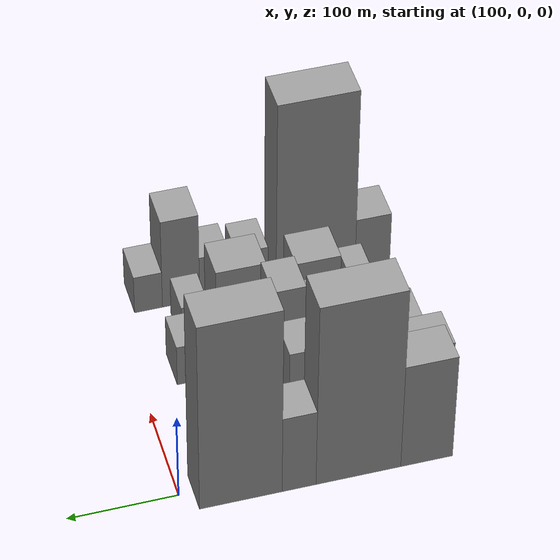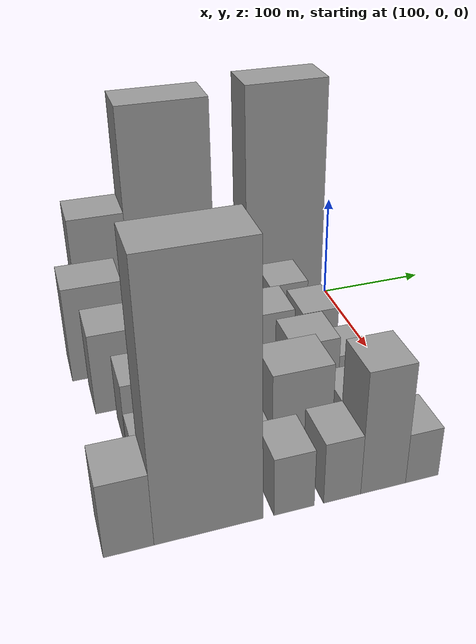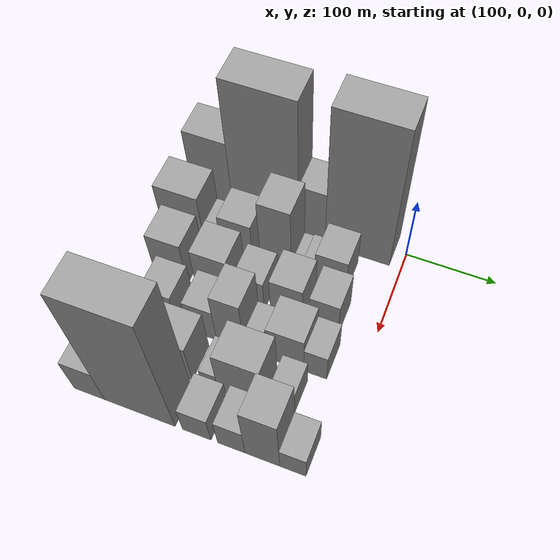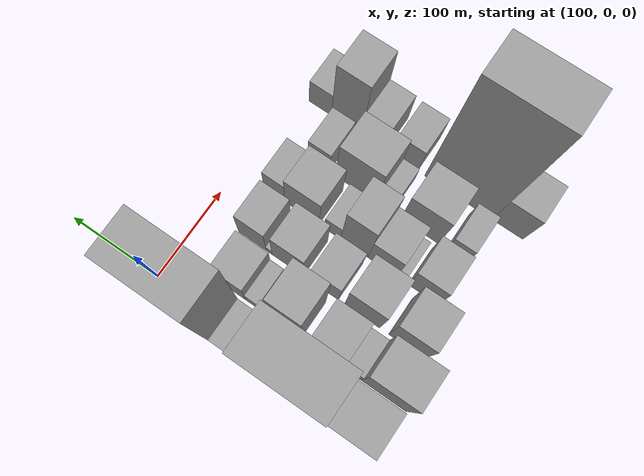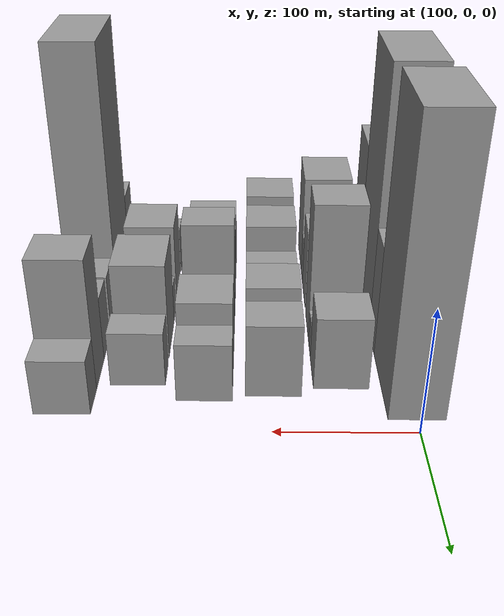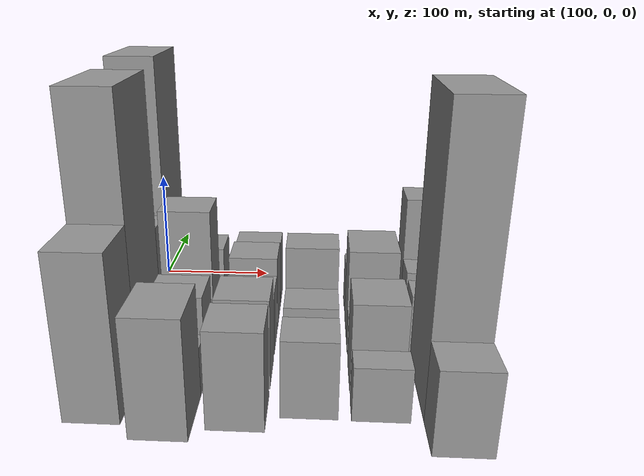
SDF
<sdf version="1.6">
 <world name="default">
  <model name="building_16">
   <static>1</static>
   <pose>100.0000 -219.1321 0 0.000000 0.000000 0.000000</pose>
   <link name="link">
    <pose>0 0 63.00 0 0 0</pose>
    <collision name="collision"><geometry><box><size>40.0000 47.6662 126.0000</size></box></geometry></collision>
    <visual name="visual">
     <cast_shadows>0</cast_shadows>
     <geometry><box><size>40.0000 47.6662 126.0000</size></box></geometry>
     <material>
      <script>
       <uri>model://grey_wall/materials/scripts</uri>
       <uri>model://grey_wall/materials/textures</uri>
       <name>vrc/grey_wall</name>
      </script>
     </material>
    </visual>
   </link>
  </model>
  <model name="building_17">
   <static>1</static>
   <pose>100.0000 -156.6568 0 0.000000 0.000000 0.000000</pose>
   <link name="link">
    <pose>0 0 109.50 0 0 0</pose>
    <collision name="collision"><geometry><box><size>40.0000 77.2843 219.0000</size></box></geometry></collision>
    <visual name="visual">
     <cast_shadows>0</cast_shadows>
     <geometry><box><size>40.0000 77.2843 219.0000</size></box></geometry>
     <material>
      <script>
       <uri>model://grey_wall/materials/scripts</uri>
       <uri>model://grey_wall/materials/textures</uri>
       <name>vrc/grey_wall</name>
      </script>
     </material>
    </visual>
   </link>
  </model>
  <model name="building_18">
   <static>1</static>
   <pose>100.0000 -102.6822 0 0.000000 0.000000 0.000000</pose>
   <link name="link">
    <pose>0 0 46.50 0 0 0</pose>
    <collision name="collision"><geometry><box><size>40.0000 30.6650 93.0000</size></box></geometry></collision>
    <visual name="visual">
     <cast_shadows>0</cast_shadows>
     <geometry><box><size>40.0000 30.6650 93.0000</size></box></geometry>
     <material>
      <script>
       <uri>model://grey_wall/materials/scripts</uri>
       <uri>model://grey_wall/materials/textures</uri>
       <name>vrc/grey_wall</name>
      </script>
     </material>
    </visual>
   </link>
  </model>
  <model name="building_19">
   <static>1</static>
   <pose>100.0000 -50.2767 0 0.000000 0.000000 0.000000</pose>
   <link name="link">
    <pose>0 0 112.50 0 0 0</pose>
    <collision name="collision"><geometry><box><size>40.0000 74.1460 225.0000</size></box></geometry></collision>
    <visual name="visual">
     <cast_shadows>0</cast_shadows>
     <geometry><box><size>40.0000 74.1460 225.0000</size></box></geometry>
     <material>
      <script>
       <uri>model://grey_wall/materials/scripts</uri>
       <uri>model://grey_wall/materials/textures</uri>
       <name>vrc/grey_wall</name>
      </script>
     </material>
    </visual>
   </link>
  </model>
  <model name="building_62">
   <static>1</static>
   <pose>149.0000 -232.9985 0 0.000000 0.000000 0.000000</pose>
   <link name="link">
    <pose>0 0 45.00 0 0 0</pose>
    <collision name="collision"><geometry><box><size>40.0000 48.9528 90.0000</size></box></geometry></collision>
    <visual name="visual">
     <cast_shadows>0</cast_shadows>
     <geometry><box><size>40.0000 48.9528 90.0000</size></box></geometry>
     <material>
      <script>
       <uri>model://grey_wall/materials/scripts</uri>
       <uri>model://grey_wall/materials/textures</uri>
       <name>vrc/grey_wall</name>
      </script>
     </material>
    </visual>
   </link>
  </model>
  <model name="building_63">
   <static>1</static>
   <pose>149.0000 -198.7136 0 0.000000 0.000000 0.000000</pose>
   <link name="link">
    <pose>0 0 19.50 0 0 0</pose>
    <collision name="collision"><geometry><box><size>40.0000 19.6170 39.0000</size></box></geometry></collision>
    <visual name="visual">
     <cast_shadows>0</cast_shadows>
     <geometry><box><size>40.0000 19.6170 39.0000</size></box></geometry>
     <material>
      <script>
       <uri>model://grey_wall/materials/scripts</uri>
       <uri>model://grey_wall/materials/textures</uri>
       <name>vrc/grey_wall</name>
      </script>
     </material>
    </visual>
   </link>
  </model>
  <model name="building_64">
   <static>1</static>
   <pose>149.0000 -170.3806 0 0.000000 0.000000 0.000000</pose>
   <link name="link">
    <pose>0 0 34.50 0 0 0</pose>
    <collision name="collision"><geometry><box><size>40.0000 37.0490 69.0000</size></box></geometry></collision>
    <visual name="visual">
     <cast_shadows>0</cast_shadows>
     <geometry><box><size>40.0000 37.0490 69.0000</size></box></geometry>
     <material>
      <script>
       <uri>model://grey_wall/materials/scripts</uri>
       <uri>model://grey_wall/materials/textures</uri>
       <name>vrc/grey_wall</name>
      </script>
     </material>
    </visual>
   </link>
  </model>
  <model name="building_65">
   <static>1</static>
   <pose>149.0000 -125.1274 0 0.000000 0.000000 0.000000</pose>
   <link name="link">
    <pose>0 0 58.50 0 0 0</pose>
    <collision name="collision"><geometry><box><size>40.0000 35.4574 117.0000</size></box></geometry></collision>
    <visual name="visual">
     <cast_shadows>0</cast_shadows>
     <geometry><box><size>40.0000 35.4574 117.0000</size></box></geometry>
     <material>
      <script>
       <uri>model://grey_wall/materials/scripts</uri>
       <uri>model://grey_wall/materials/textures</uri>
       <name>vrc/grey_wall</name>
      </script>
     </material>
    </visual>
   </link>
  </model>
  <model name="building_66">
   <static>1</static>
   <pose>149.0000 -101.9078 0 0.000000 0.000000 0.000000</pose>
   <link name="link">
    <pose>0 0 13.50 0 0 0</pose>
    <collision name="collision"><geometry><box><size>40.0000 10.9818 27.0000</size></box></geometry></collision>
    <visual name="visual">
     <cast_shadows>0</cast_shadows>
     <geometry><box><size>40.0000 10.9818 27.0000</size></box></geometry>
     <material>
      <script>
       <uri>model://grey_wall/materials/scripts</uri>
       <uri>model://grey_wall/materials/textures</uri>
       <name>vrc/grey_wall</name>
      </script>
     </material>
    </visual>
   </link>
  </model>
  <model name="building_67">
   <static>1</static>
   <pose>149.0000 -88.7672 0 0.000000 0.000000 0.000000</pose>
   <link name="link">
    <pose>0 0 15.00 0 0 0</pose>
    <collision name="collision"><geometry><box><size>40.0000 15.2995 30.0000</size></box></geometry></collision>
    <visual name="visual">
     <cast_shadows>0</cast_shadows>
     <geometry><box><size>40.0000 15.2995 30.0000</size></box></geometry>
     <material>
      <script>
       <uri>model://grey_wall/materials/scripts</uri>
       <uri>model://grey_wall/materials/textures</uri>
       <name>vrc/grey_wall</name>
      </script>
     </material>
    </visual>
   </link>
  </model>
  <model name="building_68">
   <static>1</static>
   <pose>149.0000 -63.5517 0 0.000000 0.000000 0.000000</pose>
   <link name="link">
    <pose>0 0 30.00 0 0 0</pose>
    <collision name="collision"><geometry><box><size>40.0000 35.1316 60.0000</size></box></geometry></collision>
    <visual name="visual">
     <cast_shadows>0</cast_shadows>
     <geometry><box><size>40.0000 35.1316 60.0000</size></box></geometry>
     <material>
      <script>
       <uri>model://grey_wall/materials/scripts</uri>
       <uri>model://grey_wall/materials/textures</uri>
       <name>vrc/grey_wall</name>
      </script>
     </material>
    </visual>
   </link>
  </model>
  <model name="building_115">
   <static>1</static>
   <pose>198.0000 -225.9661 0 0.000000 0.000000 0.000000</pose>
   <link name="link">
    <pose>0 0 37.50 0 0 0</pose>
    <collision name="collision"><geometry><box><size>40.0000 38.3356 75.0000</size></box></geometry></collision>
    <visual name="visual">
     <cast_shadows>0</cast_shadows>
     <geometry><box><size>40.0000 38.3356 75.0000</size></box></geometry>
     <material>
      <script>
       <uri>model://grey_wall/materials/scripts</uri>
       <uri>model://grey_wall/materials/textures</uri>
       <name>vrc/grey_wall</name>
      </script>
     </material>
    </visual>
   </link>
  </model>
  <model name="building_116">
   <static>1</static>
   <pose>198.0000 -177.3734 0 0.000000 0.000000 0.000000</pose>
   <link name="link">
    <pose>0 0 36.00 0 0 0</pose>
    <collision name="collision"><geometry><box><size>40.0000 38.8499 72.0000</size></box></geometry></collision>
    <visual name="visual">
     <cast_shadows>0</cast_shadows>
     <geometry><box><size>40.0000 38.8499 72.0000</size></box></geometry>
     <material>
      <script>
       <uri>model://grey_wall/materials/scripts</uri>
       <uri>model://grey_wall/materials/textures</uri>
       <name>vrc/grey_wall</name>
      </script>
     </material>
    </visual>
   </link>
  </model>
  <model name="building_117">
   <static>1</static>
   <pose>198.0000 -134.8131 0 0.000000 0.000000 0.000000</pose>
   <link name="link">
    <pose>0 0 27.00 0 0 0</pose>
    <collision name="collision"><geometry><box><size>40.0000 32.2707 54.0000</size></box></geometry></collision>
    <visual name="visual">
     <cast_shadows>0</cast_shadows>
     <geometry><box><size>40.0000 32.2707 54.0000</size></box></geometry>
     <material>
      <script>
       <uri>model://grey_wall/materials/scripts</uri>
       <uri>model://grey_wall/materials/textures</uri>
       <name>vrc/grey_wall</name>
      </script>
     </material>
    </visual>
   </link>
  </model>
  <model name="building_118">
   <static>1</static>
   <pose>198.0000 -93.8465 0 0.000000 0.000000 0.000000</pose>
   <link name="link">
    <pose>0 0 33.00 0 0 0</pose>
    <collision name="collision"><geometry><box><size>40.0000 35.6626 66.0000</size></box></geometry></collision>
    <visual name="visual">
     <cast_shadows>0</cast_shadows>
     <geometry><box><size>40.0000 35.6626 66.0000</size></box></geometry>
     <material>
      <script>
       <uri>model://grey_wall/materials/scripts</uri>
       <uri>model://grey_wall/materials/textures</uri>
       <name>vrc/grey_wall</name>
      </script>
     </material>
    </visual>
   </link>
  </model>
  <model name="building_119">
   <static>1</static>
   <pose>198.0000 -72.4937 0 0.000000 0.000000 0.000000</pose>
   <link name="link">
    <pose>0 0 7.50 0 0 0</pose>
    <collision name="collision"><geometry><box><size>40.0000 7.0430 15.0000</size></box></geometry></collision>
    <visual name="visual">
     <cast_shadows>0</cast_shadows>
     <geometry><box><size>40.0000 7.0430 15.0000</size></box></geometry>
     <material>
      <script>
       <uri>model://grey_wall/materials/scripts</uri>
       <uri>model://grey_wall/materials/textures</uri>
       <name>vrc/grey_wall</name>
      </script>
     </material>
    </visual>
   </link>
  </model>
  <model name="building_120">
   <static>1</static>
   <pose>198.0000 -53.0668 0 0.000000 0.000000 0.000000</pose>
   <link name="link">
    <pose>0 0 30.00 0 0 0</pose>
    <collision name="collision"><geometry><box><size>40.0000 31.8107 60.0000</size></box></geometry></collision>
    <visual name="visual">
     <cast_shadows>0</cast_shadows>
     <geometry><box><size>40.0000 31.8107 60.0000</size></box></geometry>
     <material>
      <script>
       <uri>model://grey_wall/materials/scripts</uri>
       <uri>model://grey_wall/materials/textures</uri>
       <name>vrc/grey_wall</name>
      </script>
     </material>
    </visual>
   </link>
  </model>
  <model name="building_158">
   <static>1</static>
   <pose>247.0000 -212.8145 0 0.000000 0.000000 0.000000</pose>
   <link name="link">
    <pose>0 0 30.00 0 0 0</pose>
    <collision name="collision"><geometry><box><size>40.0000 33.1645 60.0000</size></box></geometry></collision>
    <visual name="visual">
     <cast_shadows>0</cast_shadows>
     <geometry><box><size>40.0000 33.1645 60.0000</size></box></geometry>
     <material>
      <script>
       <uri>model://grey_wall/materials/scripts</uri>
       <uri>model://grey_wall/materials/textures</uri>
       <name>vrc/grey_wall</name>
      </script>
     </material>
    </visual>
   </link>
  </model>
  <model name="building_159">
   <static>1</static>
   <pose>247.0000 -187.9735 0 0.000000 0.000000 0.000000</pose>
   <link name="link">
    <pose>0 0 10.50 0 0 0</pose>
    <collision name="collision"><geometry><box><size>40.0000 8.5174 21.0000</size></box></geometry></collision>
    <visual name="visual">
     <cast_shadows>0</cast_shadows>
     <geometry><box><size>40.0000 8.5174 21.0000</size></box></geometry>
     <material>
      <script>
       <uri>model://grey_wall/materials/scripts</uri>
       <uri>model://grey_wall/materials/textures</uri>
       <name>vrc/grey_wall</name>
      </script>
     </material>
    </visual>
   </link>
  </model>
  <model name="building_160">
   <static>1</static>
   <pose>247.0000 -167.5328 0 0.000000 0.000000 0.000000</pose>
   <link name="link">
    <pose>0 0 30.00 0 0 0</pose>
    <collision name="collision"><geometry><box><size>40.0000 32.3640 60.0000</size></box></geometry></collision>
    <visual name="visual">
     <cast_shadows>0</cast_shadows>
     <geometry><box><size>40.0000 32.3640 60.0000</size></box></geometry>
     <material>
      <script>
       <uri>model://grey_wall/materials/scripts</uri>
       <uri>model://grey_wall/materials/textures</uri>
       <name>vrc/grey_wall</name>
      </script>
     </material>
    </visual>
   </link>
  </model>
  <model name="building_161">
   <static>1</static>
   <pose>247.0000 -135.9213 0 0.000000 0.000000 0.000000</pose>
   <link name="link">
    <pose>0 0 46.50 0 0 0</pose>
    <collision name="collision"><geometry><box><size>40.0000 30.8590 93.0000</size></box></geometry></collision>
    <visual name="visual">
     <cast_shadows>0</cast_shadows>
     <geometry><box><size>40.0000 30.8590 93.0000</size></box></geometry>
     <material>
      <script>
       <uri>model://grey_wall/materials/scripts</uri>
       <uri>model://grey_wall/materials/textures</uri>
       <name>vrc/grey_wall</name>
      </script>
     </material>
    </visual>
   </link>
  </model>
  <model name="building_162">
   <static>1</static>
   <pose>247.0000 -111.0636 0 0.000000 0.000000 0.000000</pose>
   <link name="link">
    <pose>0 0 18.00 0 0 0</pose>
    <collision name="collision"><geometry><box><size>40.0000 18.8565 36.0000</size></box></geometry></collision>
    <visual name="visual">
     <cast_shadows>0</cast_shadows>
     <geometry><box><size>40.0000 18.8565 36.0000</size></box></geometry>
     <material>
      <script>
       <uri>model://grey_wall/materials/scripts</uri>
       <uri>model://grey_wall/materials/textures</uri>
       <name>vrc/grey_wall</name>
      </script>
     </material>
    </visual>
   </link>
  </model>
  <model name="building_163">
   <static>1</static>
   <pose>247.0000 -75.8378 0 0.000000 0.000000 0.000000</pose>
   <link name="link">
    <pose>0 0 33.00 0 0 0</pose>
    <collision name="collision"><geometry><box><size>40.0000 39.5952 66.0000</size></box></geometry></collision>
    <visual name="visual">
     <cast_shadows>0</cast_shadows>
     <geometry><box><size>40.0000 39.5952 66.0000</size></box></geometry>
     <material>
      <script>
       <uri>model://grey_wall/materials/scripts</uri>
       <uri>model://grey_wall/materials/textures</uri>
       <name>vrc/grey_wall</name>
      </script>
     </material>
    </visual>
   </link>
  </model>
  <model name="building_164">
   <static>1</static>
   <pose>247.0000 -43.8444 0 0.000000 0.000000 0.000000</pose>
   <link name="link">
    <pose>0 0 24.00 0 0 0</pose>
    <collision name="collision"><geometry><box><size>40.0000 24.3916 48.0000</size></box></geometry></collision>
    <visual name="visual">
     <cast_shadows>0</cast_shadows>
     <geometry><box><size>40.0000 24.3916 48.0000</size></box></geometry>
     <material>
      <script>
       <uri>model://grey_wall/materials/scripts</uri>
       <uri>model://grey_wall/materials/textures</uri>
       <name>vrc/grey_wall</name>
      </script>
     </material>
    </visual>
   </link>
  </model>
  <model name="building_208">
   <static>1</static>
   <pose>296.0000 -218.7961 0 0.000000 0.000000 0.000000</pose>
   <link name="link">
    <pose>0 0 21.00 0 0 0</pose>
    <collision name="collision"><geometry><box><size>40.0000 22.5271 42.0000</size></box></geometry></collision>
    <visual name="visual">
     <cast_shadows>0</cast_shadows>
     <geometry><box><size>40.0000 22.5271 42.0000</size></box></geometry>
     <material>
      <script>
       <uri>model://grey_wall/materials/scripts</uri>
       <uri>model://grey_wall/materials/textures</uri>
       <name>vrc/grey_wall</name>
      </script>
     </material>
    </visual>
   </link>
  </model>
  <model name="building_209">
   <static>1</static>
   <pose>296.0000 -177.3024 0 0.000000 0.000000 0.000000</pose>
   <link name="link">
    <pose>0 0 36.00 0 0 0</pose>
    <collision name="collision"><geometry><box><size>40.0000 42.4602 72.0000</size></box></geometry></collision>
    <visual name="visual">
     <cast_shadows>0</cast_shadows>
     <geometry><box><size>40.0000 42.4602 72.0000</size></box></geometry>
     <material>
      <script>
       <uri>model://grey_wall/materials/scripts</uri>
       <uri>model://grey_wall/materials/textures</uri>
       <name>vrc/grey_wall</name>
      </script>
     </material>
    </visual>
   </link>
  </model>
  <model name="building_210">
   <static>1</static>
   <pose>296.0000 -137.2329 0 0.000000 0.000000 0.000000</pose>
   <link name="link">
    <pose>0 0 16.50 0 0 0</pose>
    <collision name="collision"><geometry><box><size>40.0000 17.6788 33.0000</size></box></geometry></collision>
    <visual name="visual">
     <cast_shadows>0</cast_shadows>
     <geometry><box><size>40.0000 17.6788 33.0000</size></box></geometry>
     <material>
      <script>
       <uri>model://grey_wall/materials/scripts</uri>
       <uri>model://grey_wall/materials/textures</uri>
       <name>vrc/grey_wall</name>
      </script>
     </material>
    </visual>
   </link>
  </model>
  <model name="building_211">
   <static>1</static>
   <pose>296.0000 -104.7589 0 0.000000 0.000000 0.000000</pose>
   <link name="link">
    <pose>0 0 40.50 0 0 0</pose>
    <collision name="collision"><geometry><box><size>40.0000 47.2693 81.0000</size></box></geometry></collision>
    <visual name="visual">
     <cast_shadows>0</cast_shadows>
     <geometry><box><size>40.0000 47.2693 81.0000</size></box></geometry>
     <material>
      <script>
       <uri>model://grey_wall/materials/scripts</uri>
       <uri>model://grey_wall/materials/textures</uri>
       <name>vrc/grey_wall</name>
      </script>
     </material>
    </visual>
   </link>
  </model>
  <model name="building_212">
   <static>1</static>
   <pose>296.0000 -61.4212 0 0.000000 0.000000 0.000000</pose>
   <link name="link">
    <pose>0 0 22.50 0 0 0</pose>
    <collision name="collision"><geometry><box><size>40.0000 25.4060 45.0000</size></box></geometry></collision>
    <visual name="visual">
     <cast_shadows>0</cast_shadows>
     <geometry><box><size>40.0000 25.4060 45.0000</size></box></geometry>
     <material>
      <script>
       <uri>model://grey_wall/materials/scripts</uri>
       <uri>model://grey_wall/materials/textures</uri>
       <name>vrc/grey_wall</name>
      </script>
     </material>
    </visual>
   </link>
  </model>
  <model name="building_251">
   <static>1</static>
   <pose>345.0000 -245.1053 0 0.000000 0.000000 0.000000</pose>
   <link name="link">
    <pose>0 0 31.50 0 0 0</pose>
    <collision name="collision"><geometry><box><size>40.0000 33.8645 63.0000</size></box></geometry></collision>
    <visual name="visual">
     <cast_shadows>0</cast_shadows>
     <geometry><box><size>40.0000 33.8645 63.0000</size></box></geometry>
     <material>
      <script>
       <uri>model://grey_wall/materials/scripts</uri>
       <uri>model://grey_wall/materials/textures</uri>
       <name>vrc/grey_wall</name>
      </script>
     </material>
    </visual>
   </link>
  </model>
  <model name="building_252">
   <static>1</static>
   <pose>345.0000 -189.9822 0 0.000000 0.000000 0.000000</pose>
   <link name="link">
    <pose>0 0 111.00 0 0 0</pose>
    <collision name="collision"><geometry><box><size>40.0000 76.3817 222.0000</size></box></geometry></collision>
    <visual name="visual">
     <cast_shadows>0</cast_shadows>
     <geometry><box><size>40.0000 76.3817 222.0000</size></box></geometry>
     <material>
      <script>
       <uri>model://grey_wall/materials/scripts</uri>
       <uri>model://grey_wall/materials/textures</uri>
       <name>vrc/grey_wall</name>
      </script>
     </material>
    </visual>
   </link>
  </model>
  <model name="building_253">
   <static>1</static>
   <pose>345.0000 -128.8154 0 0.000000 0.000000 0.000000</pose>
   <link name="link">
    <pose>0 0 25.50 0 0 0</pose>
    <collision name="collision"><geometry><box><size>40.0000 29.9518 51.0000</size></box></geometry></collision>
    <visual name="visual">
     <cast_shadows>0</cast_shadows>
     <geometry><box><size>40.0000 29.9518 51.0000</size></box></geometry>
     <material>
      <script>
       <uri>model://grey_wall/materials/scripts</uri>
       <uri>model://grey_wall/materials/textures</uri>
       <name>vrc/grey_wall</name>
      </script>
     </material>
    </visual>
   </link>
  </model>
  <model name="building_254">
   <static>1</static>
   <pose>345.0000 -92.6307 0 0.000000 0.000000 0.000000</pose>
   <link name="link">
    <pose>0 0 27.00 0 0 0</pose>
    <collision name="collision"><geometry><box><size>40.0000 28.4176 54.0000</size></box></geometry></collision>
    <visual name="visual">
     <cast_shadows>0</cast_shadows>
     <geometry><box><size>40.0000 28.4176 54.0000</size></box></geometry>
     <material>
      <script>
       <uri>model://grey_wall/materials/scripts</uri>
       <uri>model://grey_wall/materials/textures</uri>
       <name>vrc/grey_wall</name>
      </script>
     </material>
    </visual>
   </link>
  </model>
  <model name="building_255">
   <static>1</static>
   <pose>345.0000 -60.7412 0 0.000000 0.000000 0.000000</pose>
   <link name="link">
    <pose>0 0 54.00 0 0 0</pose>
    <collision name="collision"><geometry><box><size>40.0000 35.3615 108.0000</size></box></geometry></collision>
    <visual name="visual">
     <cast_shadows>0</cast_shadows>
     <geometry><box><size>40.0000 35.3615 108.0000</size></box></geometry>
     <material>
      <script>
       <uri>model://grey_wall/materials/scripts</uri>
       <uri>model://grey_wall/materials/textures</uri>
       <name>vrc/grey_wall</name>
      </script>
     </material>
    </visual>
   </link>
  </model>
  <model name="building_256">
   <static>1</static>
   <pose>345.0000 -29.8435 0 0.000000 0.000000 0.000000</pose>
   <link name="link">
    <pose>0 0 22.50 0 0 0</pose>
    <collision name="collision"><geometry><box><size>40.0000 26.4338 45.0000</size></box></geometry></collision>
    <visual name="visual">
     <cast_shadows>0</cast_shadows>
     <geometry><box><size>40.0000 26.4338 45.0000</size></box></geometry>
     <material>
      <script>
       <uri>model://grey_wall/materials/scripts</uri>
       <uri>model://grey_wall/materials/textures</uri>
       <name>vrc/grey_wall</name>
      </script>
     </material>
    </visual>
   </link>
  </model>
 </world>
</sdf>
